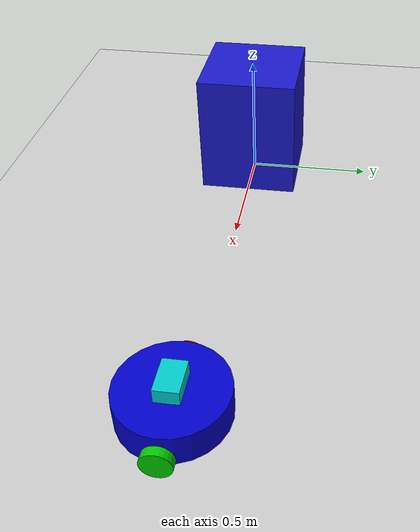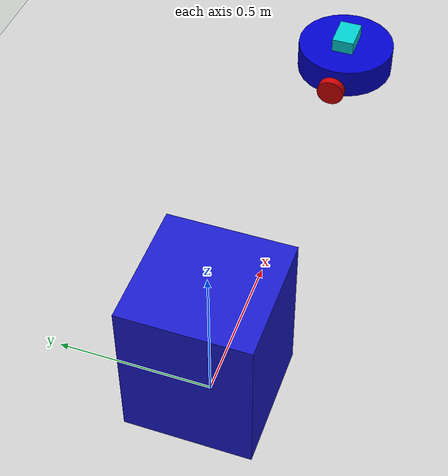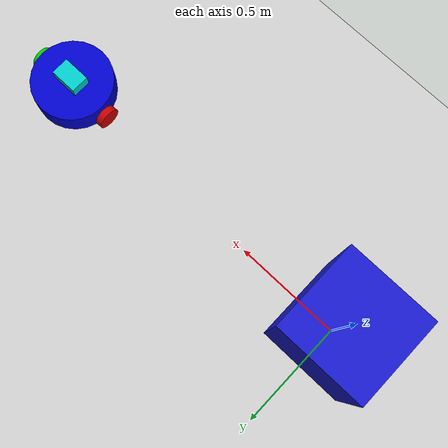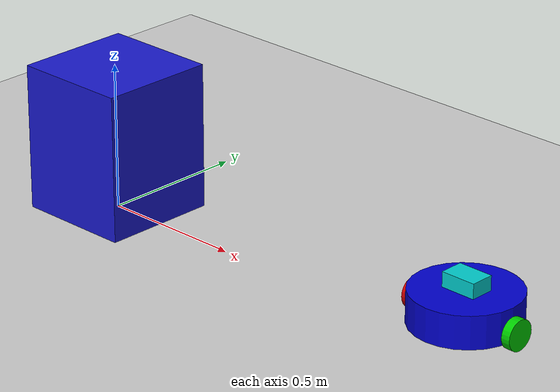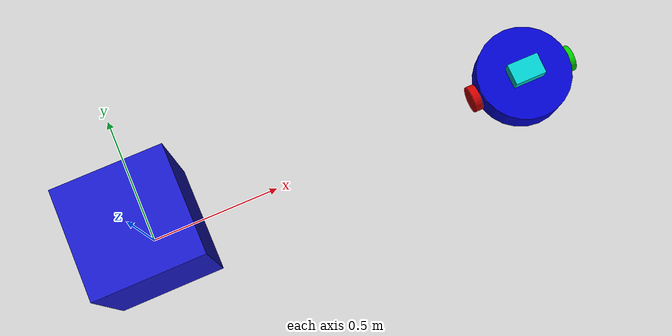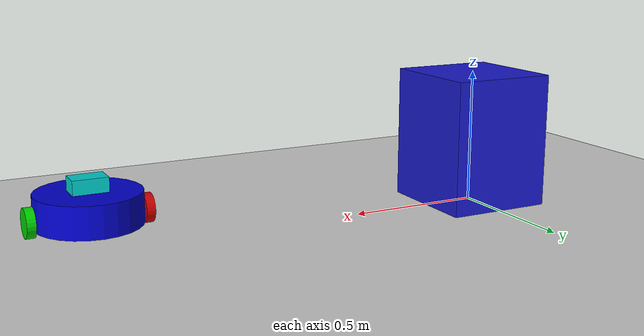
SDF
<?xml version="1.0" ?>
<sdf version="1.8">
  <world name="default">

    <plugin filename="libignition-gazebo-physics-system.so" name="ignition::gazebo::systems::Physics"/>
    <plugin filename="libignition-gazebo-user-commands-system.so" name="ignition::gazebo::systems::UserCommands"/>
    <plugin filename="libignition-gazebo-scene-broadcaster-system.so" name="ignition::gazebo::systems::SceneBroadcaster"/>
    <plugin filename="libignition-gazebo-sensors-system.so" name="ignition::gazebo::systems::Sensors">
      <render_engine>ogre2</render_engine>
    </plugin>

    <light type="directional" name="sun">
      <cast_shadows>true</cast_shadows>
      <pose>0 0 10 0 0 0</pose>
      <diffuse>0.8 0.8 0.8 1</diffuse>
      <specular>0.2 0.2 0.2 1</specular>
      <direction>-0.5 0.1 -0.9</direction>
    </light>

    <model name="ground_plane">
      <static>true</static>
      <link name="link">
        <collision name="collision">
          <geometry><plane><normal>0 0 1</normal><size>100 100</size></plane></geometry>
        </collision>
        <visual name="visual">
          <geometry><plane><normal>0 0 1</normal><size>100 100</size></plane></geometry>
          <material>
            <ambient>0.8 0.8 0.8 1</ambient>
            <diffuse>0.8 0.8 0.8 1</diffuse>
          </material>
        </visual>
      </link>
    </model>

    <include>
      <uri>qbot.sdf</uri>
      <pose>1.5 0 0.1 0 0 1.570796</pose>
    </include>

    <model name="target_object">
      <static>true</static>
      <pose>0 0 0.25 0 0 0</pose>
      <link name="link">
        <collision name="c">
          <geometry><box><size>0.4 0.4 0.5</size></box></geometry>
        </collision>
        <visual name="v">
          <geometry><box><size>0.4 0.4 0.5</size></box></geometry>
          <material>
            <ambient>0.1 0.1 0.8 1</ambient>
            <diffuse>0.1 0.1 0.8 1</diffuse>
          </material>
        </visual>
      </link>
    </model>

  </world>
</sdf>

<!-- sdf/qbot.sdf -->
<sdf version="1.8">
    <model name='qbot' canonical_link='base_link'>

        <plugin
            filename="libign_ros2_control-system.so"
            name="ign_ros2_control::IgnitionROS2ControlPlugin">

            # <parameters>/home/netrunner/Documents/Robotics_and_Automation/LABS/lab-06-Dineth-Sankalpa/CS3340-Workspace/src/qbot_description/config/qbot_controllers.yaml</parameters>

            <parameters>$(find qbot_description)/config/qbot_controllers.yaml</parameters>
        </plugin>

        <pose>0 0 0 0 0 0</pose>

        <ros2_control name="qbot_system" type="system">
            <hardware>
                <plugin>ign_ros2_control/IgnitionSystem</plugin>
            </hardware>
            <joint name="wheel_left_joint">
                <command_interface name="velocity">
                    <param name="min">-10</param>
                    <param name="max">10</param>
                </command_interface>
                <state_interface name="position"/>
                <state_interface name="velocity"/>
            </joint>
            <joint name="wheel_right_joint">
                <command_interface name="velocity">
                    <param name="min">-10</param>
                    <param name="max">10</param>
                </command_interface>
                <state_interface name="position"/>
                <state_interface name="velocity"/>
            </joint>
        </ros2_control>

        <link name='base_link'>
            <pose>0 0 0.05949 0 0 0</pose>
            <inertial>
                <mass>2.4</mass>
                <inertia>
                    <ixx>0.019995</ixx>
                    <ixy>0</ixy>
                    <ixz>0</ixz>
                    <iyy>0.019995</iyy>
                    <iyz>0</iyz>
                    <izz>0.03675</izz>
                </inertia>
            </inertial>
            <visual name='base_visual'>
                <geometry>
                    <cylinder>
                        <radius>0.178</radius>
                        <length>0.10938</length>
                    </cylinder>
                </geometry>
                <material>
                    <ambient>0.0 0.0 0.8 1</ambient>
                    <diffuse>0.0 0.0 0.8 1</diffuse>
                    <specular>1 1 1 1</specular>
                </material>
            </visual>
            <collision name='base_collision'>
                <geometry>
                    <cylinder>
                        <radius>0.178</radius>
                        <length>0.10938</length>
                    </cylinder>
                </geometry>
            </collision>
        </link>

        <link name='wheel_left_link'>
            <pose relative_to='base_link'>0 0.193 -0.0245 -1.57079632679 0 0</pose>
            <inertial>
                <mass>0.2</mass>
                <inertia>
                    <ixx>0.00014</ixx>
                    <ixy>0</ixy>
                    <ixz>0</ixz>
                    <iyy>0.00014</iyy>
                    <iyz>0</iyz>
                    <izz>0.00025</izz>
                </inertia>
            </inertial>
            <visual name='wheel_left_visual'>
                <geometry>
                    <cylinder>
                        <radius>0.05</radius>
                        <length>0.03</length>
                    </cylinder>
                </geometry>
                <material>
                    <ambient>0.8 0.0 0.0 1</ambient>
                    <diffuse>0.8 0.0 0.0 1</diffuse>
                    <specular>1 1 1 1</specular>
                </material>
            </visual>
            <collision name='wheel_left_collision'>
                <geometry>
                    <cylinder>
                        <radius>0.05</radius>
                        <length>0.03</length>
                    </cylinder>
                </geometry>
                <surface>
                    <friction>
                        <ode>
                            <mu>1.0</mu>
                            <mu2>1.0</mu2>
                        </ode>
                    </friction>
                </surface>
            </collision>
        </link>

        <link name='wheel_right_link'>
            <pose relative_to='base_link'>0 -0.193 -0.0245 -1.57079632679 0 0</pose>
            <inertial>
                <mass>0.2</mass>
                <inertia>
                    <ixx>0.00014</ixx>
                    <ixy>0</ixy>
                    <ixz>0</ixz>
                    <iyy>0.00014</iyy>
                    <iyz>0</iyz>
                    <izz>0.00025</izz>
                </inertia>
            </inertial>
            <visual name='wheel_right_visual'>
                <geometry>
                    <cylinder>
                        <radius>0.05</radius>
                        <length>0.03</length>
                    </cylinder>
                </geometry>
                <material>
                    <ambient>0.0 0.8 0.0 1</ambient>
                    <diffuse>0.0 0.8 0.0 1</diffuse>
                    <specular>1 1 1 1</specular>
                </material>
            </visual>
            <collision name='wheel_right_collision'>
                <geometry>
                    <cylinder>
                        <radius>0.05</radius>
                        <length>0.03</length>
                    </cylinder>
                </geometry>
                <surface>
                    <friction>
                        <ode>
                            <mu>1.0</mu>
                            <mu2>1.0</mu2>
                        </ode>
                    </friction>
                </surface>
            </collision>
        </link>

        <link name='caster_front_link'>
            <pose relative_to='base_link'>0.115 0 -0.0485 -1.57079632679 0 0</pose>
            <inertial>
                <mass>0.01</mass>
                <inertia>
                    <ixx>0.001</ixx>
                    <ixy>0</ixy>
                    <ixz>0</ixz>
                    <iyy>0.001</iyy>
                    <iyz>0</iyz>
                    <izz>0.001</izz>
                </inertia>
            </inertial>
            <visual name='caster_front_visual'>
                <geometry>
                    <sphere>
                        <radius>0.025</radius>
                    </sphere>
                </geometry>
                <material>
                    <ambient>0.8 0.8 0.0 1</ambient>
                    <diffuse>0.8 0.8 0.0 1</diffuse>
                    <specular>1 1 1 1</specular>
                </material>
            </visual>
            <collision name='caster_front_collision'>
                <geometry>
                    <sphere>
                        <radius>0.025</radius>
                    </sphere>
                </geometry>
                <surface>
                    <friction>
                        <ode>
                            <mu>0.0</mu>
                            <mu2>0.0</mu2>
                        </ode>
                    </friction>
                </surface>
            </collision>
        </link>

        <link name='caster_back_link'>
            <pose relative_to='base_link'>-0.135 0 -0.0485 -1.57079632679 0 0</pose>
            <inertial>
                <mass>0.01</mass>
                <inertia>
                    <ixx>0.001</ixx>
                    <ixy>0</ixy>
                    <ixz>0</ixz>
                    <iyy>0.001</iyy>
                    <iyz>0</iyz>
                    <izz>0.001</izz>
                </inertia>
            </inertial>
            <visual name='caster_back_visual'>
                <geometry>
                    <sphere>
                        <radius>0.025</radius>
                    </sphere>
                </geometry>
                <material>
                    <ambient>0.8 0.0 0.8 1</ambient>
                    <diffuse>0.8 0.0 0.8 1</diffuse>
                    <specular>1 1 1 1</specular>
                </material>
            </visual>
            <collision name='caster_back_collision'>
                <geometry>
                    <sphere>
                        <radius>0.025</radius>
                    </sphere>
                </geometry>
                <surface>
                    <friction>
                        <ode>
                            <mu>0.0</mu>
                            <mu2>0.0</mu2>
                        </ode>
                    </friction>
                </surface>
            </collision>
        </link>

        <link name='sensor_mount_link'>
            <pose relative_to='base_link'>0 0 0.07969 0 0 0</pose>
            <inertial>
                <mass>0.001</mass>
                <inertia>
                    <ixx>0.0001</ixx>
                    <ixy>0</ixy>
                    <ixz>0</ixz>
                    <iyy>0.000001</iyy>
                    <iyz>0</iyz>
                    <izz>0.0001</izz>
                </inertia>
            </inertial>
            <visual name='sensor_mount_visual'>
                <geometry>
                    <box>
                        <size>0.08 0.12 0.05</size>
                    </box>
                </geometry>
                <material>
                    <ambient>0.0 0.8 0.8 1</ambient>
                    <diffuse>0.0 0.8 0.8 1</diffuse>
                    <specular>1 1 1 1</specular>
                </material>
            </visual>
            <collision name='sensor_mount_collision'>
                <geometry>
                    <box>
                        <size>0.08 0.12 0.05</size>
                    </box>
                </geometry>
            </collision>
            <sensor name="lidar" type="gpu_lidar">
                <topic>scan</topic>
                <update_rate>10</update_rate>
                <lidar>
                    <scan>
                        <horizontal>
                            <samples>360</samples>
                            <resolution>1</resolution>
                            <min_angle>-3.14159</min_angle>
                            <max_angle>3.14159</max_angle>
                        </horizontal>
                    </scan>
                    <range>
                        <min>0.12</min>
                        <max>10.0</max>
                        <resolution>0.01</resolution>
                    </range>
                    <noise>
                        <type>gaussian</type>
                        <mean>0.0</mean>
                        <stddev>0.01</stddev>
                    </noise>
                </lidar>
                <always_on>1</always_on>
                <visualize>true</visualize>
                <gz_frame_id>sensor_mount_link</gz_frame_id>
            </sensor>
        </link>

        <joint name="wheel_left_joint" type="revolute">
            <parent>base_link</parent>
            <child>wheel_left_link</child>
            <axis>
                <xyz>0 0 1</xyz>
                <limit>
                    <lower>-1.79769e+308</lower>
                    <upper>1.79769e+308</upper>
                </limit>
            </axis>
        </joint>

        <joint name="wheel_right_joint" type="revolute">
            <parent>base_link</parent>
            <child>wheel_right_link</child>
            <axis>
                <xyz>0 0 1</xyz>
                <limit>
                    <lower>-1.79769e+308</lower>
                    <upper>1.79769e+308</upper>
                </limit>
            </axis>
        </joint>

        <joint name="caster_front_joint" type="revolute">
            <parent>base_link</parent>
            <child>caster_front_link</child>
            <axis>
                <xyz>0 0 1</xyz>
                <limit>
                    <lower>-1.79769e+308</lower>
                    <upper>1.79769e+308</upper>
                </limit>
            </axis>
        </joint>

        <joint name="caster_back_joint" type="revolute">
            <parent>base_link</parent>
            <child>caster_back_link</child>
            <axis>
                <xyz>0 0 1</xyz>
                <limit>
                    <lower>-1.79769e+308</lower>
                    <upper>1.79769e+308</upper>
                </limit>
            </axis>
        </joint>

        <joint name='sensor_mount_joint' type='fixed'>
            <parent>base_link</parent>
            <child>sensor_mount_link</child>
        </joint>

    </model>
</sdf>
